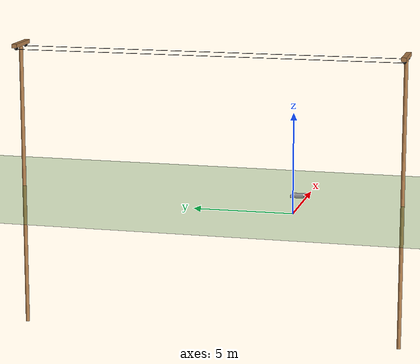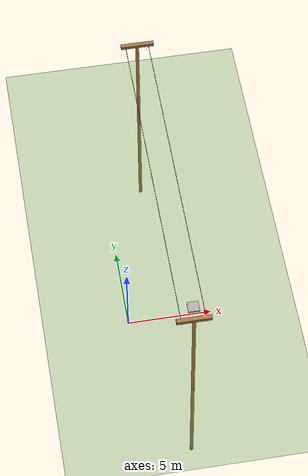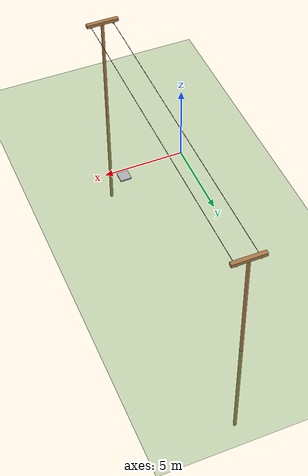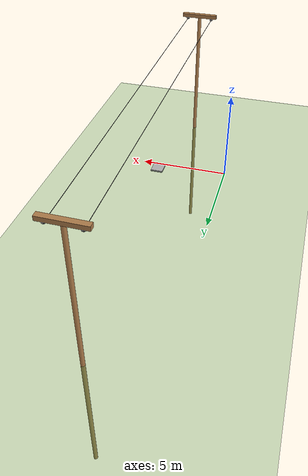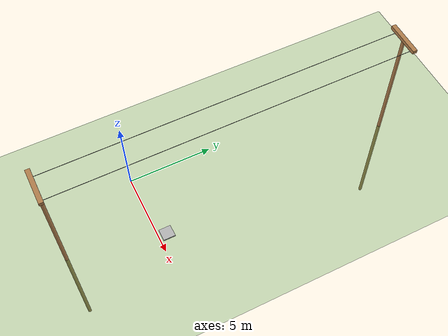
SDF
<sdf version='1.9'>
  <world name='default'>
    <physics type="ode">
      <max_step_size>0.004</max_step_size>
      <real_time_factor>1.0</real_time_factor>
      <real_time_update_rate>250</real_time_update_rate>
    </physics>
    <plugin name='gz::sim::systems::Physics' filename='gz-sim-physics-system'/>
    <plugin name='gz::sim::systems::UserCommands' filename='gz-sim-user-commands-system'/>
    <plugin name='gz::sim::systems::SceneBroadcaster' filename='gz-sim-scene-broadcaster-system'/>
    <plugin name='gz::sim::systems::Contact' filename='gz-sim-contact-system'/>
    <plugin name='gz::sim::systems::Imu' filename='gz-sim-imu-system'/>
    <plugin name='gz::sim::systems::AirPressure' filename='gz-sim-air-pressure-system'/>
    <plugin name='gz::sim::systems::Sensors' filename='gz-sim-sensors-system'>
      <render_engine>ogre2</render_engine>
    </plugin>
    <gui fullscreen='false'>

    </gui>
    <gravity>0 0 -9.8</gravity>
    <magnetic_field>6e-06 2.3e-05 -4.2e-05</magnetic_field>
    <atmosphere type='adiabatic'/>
    <scene>
      <grid>false</grid>
      <ambient>0.4 0.4 0.4 1</ambient>
      <background>0.7 0.7 0.7 1</background>
      <shadows>true</shadows>
    </scene>

    <!--PLANO-->

    <model name='ground_plane'>
      <static>true</static>
      <link name='link'>
        <collision name='collision'>
          <geometry>
            <plane>
              <normal>0 0 1</normal>
              <size>1 1</size>
            </plane>
          </geometry>
          <surface>
            <friction>
              <ode/>
            </friction>
            <bounce/>
            <contact/>
          </surface>
        </collision>
        <visual name='visual'>
          <geometry>
            <plane>
              <normal>0 0 1</normal>
              <size>100 100</size>
            </plane>
          </geometry>
          <material>
            <script>
              <name>Gazebo/Grass</name>
              <uri>/usr/share/gazebo-11/media/materials/scripts/gazebo.material</uri>
            </script>
          </material>
        </visual>
        <pose>0 0 0 0 -0 0</pose>
        <inertial>
          <pose>0 0 0 0 -0 0</pose>
          <mass>1</mass>
          <inertia>
            <ixx>1</ixx>
            <ixy>0</ixy>
            <ixz>0</ixz>
            <iyy>1</iyy>
            <iyz>0</iyz>
            <izz>1</izz>
          </inertia>
        </inertial>
        <enable_wind>false</enable_wind>
      </link>
      <pose>0 0 0 0 -0 0</pose>
      <self_collide>false</self_collide>
    </model>

    <!--Parte vertical da Torre 1 -->
    <model name='transmission_tower_vertical'>
      <static>true</static>
      <link name='torre_vertical'>
        <collision name='collision_vertical'>
          <geometry>
          <cylinder>
            <radius>0.1</radius>
            <length>15</length>
          </cylinder>
        </geometry>
          <surface>
            <friction>
              <ode/>
            </friction>
            <bounce/>
            <contact/>
          </surface>
        </collision>
        <visual name='visual_vertical'>
          <geometry>
          <cylinder>
            <radius>0.1</radius>
            <length>15</length>
          </cylinder>
        </geometry>
          <material>
            <script>
              <name>Gazebo/Wood</name>
              <uri>/usr/share/gazebo-11/media/materials/scripts/gazebo.material</uri>
            </script>
          </material>
        </visual>
        <pose>3 -5 0 0 -0 0</pose>
        <inertial>
          <pose>0 0 0 0 -0 0</pose>
          <mass>1</mass>
          <inertia>
            <ixx>1</ixx>
            <ixy>0</ixy>
            <ixz>0</ixz>
            <iyy>1</iyy>
            <iyz>0</iyz>
            <izz>1</izz>
          </inertia>
        </inertial>
        <enable_wind>false</enable_wind>
      </link>
      <pose>0 0 0 0 -0 0</pose>
      <self_collide>false</self_collide>
    </model>

    <!--Parte horizontal da Torre 1-->
    <model name='transmission_tower_horizontal'>
      <static>true</static>
      <link name='torre_horizontal'>
        <collision name='collision_horizontal'>
          <geometry>
          <box>
            <size>2 0.25 0.2</size>
          </box>
        </geometry>
          <surface>
            <friction>
              <ode/>
            </friction>
            <bounce/>
            <contact/>
          </surface>
        </collision>
        <visual name='visual_horizontal'>
          <geometry>
         <box>
            <size>2 0.25 0.2</size>
          </box>
        </geometry>
          <material>
            <script>
              <name>Gazebo/Wood</name>
              <uri>/usr/share/gazebo-11/media/materials/scripts/gazebo.material</uri>
            </script>
          </material>
        </visual>
        <pose>3 -5 7.5 0 -0 0</pose>
        <inertial>
          <pose>0 0 0 0 -0 0</pose>
          <mass>1</mass>
          <inertia>
            <ixx>1</ixx>
            <ixy>0</ixy>
            <ixz>0</ixz>
            <iyy>1</iyy>
            <iyz>0</iyz>
            <izz>1</izz>
          </inertia>
        </inertial>
        <enable_wind>false</enable_wind>
      </link>
      <pose>0 0 0 0 -0 0</pose>
      <self_collide>false</self_collide>
    </model>

    <!--Parte vertical da Torre 2-->
    <model name='transmission_tower_vertical2'>
      <static>true</static>
      <link name='torre_vertical'>
        <collision name='collision_vertical2'>
          <geometry>
          <cylinder>
            <radius>0.1</radius>
            <length>15</length>
          </cylinder>
        </geometry>
          <surface>
            <friction>
              <ode/>
            </friction>
            <bounce/>
            <contact/>
          </surface>
        </collision>
        <visual name='visual_vertical2'>
          <geometry>
          <cylinder>
            <radius>0.1</radius>
            <length>15</length>
          </cylinder>
        </geometry>
          <material>
            <script>
              <name>Gazebo/Wood</name>
              <uri>/usr/share/gazebo-11/media/materials/scripts/gazebo.material</uri>
            </script>
          </material>
        </visual>
        <pose>3 15 0 0 -0 0</pose>
        <inertial>
          <pose>0 0 0 0 -0 0</pose>
          <mass>1</mass>
          <inertia>
            <ixx>1</ixx>
            <ixy>0</ixy>
            <ixz>0</ixz>
            <iyy>1</iyy>
            </inertia>
        </inertial>
        <enable_wind>false</enable_wind>
      </link>
      <pose>0 0 0 0 -0 0</pose>
      <self_collide>false</self_collide>
    </model>

    <!--Parte horizontal da Torre 2-->
    <model name='transmission_tower_horizontal2'>
      <static>true</static>
      <link name='torre_horizontal'>
        <collision name='collision_horizontal2'>
          <geometry>
          <box>
            <size>2 0.25 0.2</size>
          </box>
        </geometry>
          <surface>
            <friction>
              <ode/>
            </friction>
            <bounce/>
            <contact/>
          </surface>
        </collision>
        <visual name='visual_horizontal'>
          <geometry>
         <box>
            <size>2 0.25 0.2</size>
          </box>
        </geometry>
          <material>
            <script>
              <name>Gazebo/Wood</name>
              <uri>/usr/share/gazebo-11/media/materials/scripts/gazebo.material</uri>
            </script>
          </material>
        </visual>
        <pose>3 15 7.5 0 -0 0</pose>
        <inertial>
          <pose>0 0 0 0 -0 0</pose>
          <mass>1</mass>
          <inertia>
            <ixx>1</ixx>
            <ixy>0</ixy>
            <ixz>0</ixz>
            <iyy>1</iyy>
            <iyz>0</iyz>
            <izz>1</izz>
          </inertia>
        </inertial>
        <enable_wind>false</enable_wind>
      </link>
      <pose>0 0 0 0 -0 0</pose>
      <self_collide>false</self_collide>
    </model>

  <!--Cabo 1-->
  <model name='cabo1'>
      <static>true</static>
      <link name='cabo1'>
        <collision name='cabo1_collision'>
          <geometry>
          <cylinder>
            <radius>0.01</radius>
            <length>20</length>
          </cylinder>
        </geometry>
          <surface>
            <friction>
              <ode/>
            </friction>
            <bounce/>
            <contact/>
          </surface>
        </collision>
        <visual name='cabo'>
          <geometry>
          <cylinder>
            <radius>0.01</radius>
            <length>20</length>
          </cylinder>
        </geometry>
          <material>
            <script>
              <name>Gazebo/Black</name>
              <uri>/usr/share/gazebo-11/media/materials/scripts/gazebo.material</uri>
            </script>
          </material>
        </visual>
        <pose>2.3 5 7.3 1.5708 -0 0</pose>
        <inertial>
          <pose>0 0 0 0 -0 0</pose>
          <mass>1</mass>
          <inertia>
            <ixx>1</ixx>
            <ixy>0</ixy>
            <ixz>0</ixz>
            <iyy>1</iyy>
            <iyz>0</iyz>
            <izz>1</izz>
          </inertia>
        </inertial>
        <enable_wind>false</enable_wind>
      </link>
      <pose>0 0 0 0 -0 0</pose>
      <self_collide>false</self_collide>
    </model>

  <!--Cabo 2-->
  <model name='cabo2'>
        <static>true</static>
        <link name='cabo2'>
          <collision name='cabo2_collision'>
            <geometry>
            <cylinder>
              <radius>0.01</radius>
              <length>20</length>
            </cylinder>
          </geometry>
            <surface>
              <friction>
                <ode/>
              </friction>
              <bounce/>
              <contact/>
            </surface>
          </collision>
          <visual name='cabo'>
            <geometry>
            <cylinder>
              <radius>0.01</radius>
              <length>20</length>
            </cylinder>
          </geometry>
            <material>
              <script>
                <name>Gazebo/Black</name>
                <uri>/usr/share/gazebo-11/media/materials/scripts/gazebo.material</uri>
              </script>
            </material>
          </visual>
          <pose>3.7 5 7.3 1.5708 -0 0</pose>
          <inertial>
            <pose>0 0 0 0 -0 0</pose>
            <mass>1</mass>
            <inertia>
              <ixx>1</ixx>
              <ixy>0</ixy>
              <ixz>0</ixz>
              <iyy>1</iyy>
              <iyz>0</iyz>
              <izz>1</izz>
            </inertia>
          </inertial>
          <enable_wind>false</enable_wind>
        </link>
        <pose>0 0 0 0 -0 0</pose>
        <self_collide>false</self_collide>
      </model>

<!--Suporte-->
  <model name='suporte_cabo'>
    <static>true</static>
    <link name="link1">
      <pose>2.3 -5 7.4 0 -0 0</pose>
      <visual name="vis1">
        <pose>0 0 0 0 0 0</pose>
      <geometry>
        <cylinder>
          <radius>0.1</radius>
          <length>0.1</length>
        </cylinder>
      </geometry>
      <material>
        <script>
          <name>Gazebo/Black</name>
          <uri>/usr/share/gazebo-11/media/materials/scripts/gazebo.material</uri>
        </script>
      </material>
    </visual>
    <visual name="vis2">
      <pose>0 0 -0.05 0 -0 0</pose>
      <geometry>
        <sphere>
          <radius>0.1</radius>
        </sphere>
      </geometry>
      <material>
        <script>
          <name>Gazebo/Black</name>
          <uri>/usr/share/gazebo-11/media/materials/scripts/gazebo.material</uri>
        </script>
      </material>
    </visual>
    <visual name="vis3">
        <pose> 1.4 0 0 0 -0 0</pose>
      <geometry>
        <cylinder>
          <radius>0.1</radius>
          <length>0.1</length>
        </cylinder>
      </geometry>
      <material>
        <script>
          <name>Gazebo/Black</name>
          <uri>/usr/share/gazebo-11/media/materials/scripts/gazebo.material</uri>
        </script>
      </material>
    </visual>
    <visual name="vis4">
      <pose>1.4 0 -0.05 0 -0 0</pose>
      <geometry>
        <sphere>
          <radius>0.1</radius>
        </sphere>
      </geometry>
      <material>
        <script>
          <name>Gazebo/Black</name>
          <uri>/usr/share/gazebo-11/media/materials/scripts/gazebo.material</uri>
        </script>
      </material>
    </visual>
    <visual name="vis5">
        <pose>0 20 0 0 0 0</pose>
      <geometry>
        <cylinder>
          <radius>0.1</radius>
          <length>0.1</length>
        </cylinder>
      </geometry>
      <material>
        <script>
          <name>Gazebo/Black</name>
          <uri>/usr/share/gazebo-11/media/materials/scripts/gazebo.material</uri>
        </script>
      </material>
    </visual>
    <visual name="vis6">
      <pose>0 20 -0.05 0 -0 0</pose>
      <geometry>
        <sphere>
          <radius>0.1</radius>
        </sphere>
      </geometry>
      <material>
        <script>
          <name>Gazebo/Black</name>
          <uri>/usr/share/gazebo-11/media/materials/scripts/gazebo.material</uri>
        </script>
      </material>
    </visual>
    <visual name="vis7">
        <pose> 1.4 20 0 0 -0 0</pose>
      <geometry>
        <cylinder>
          <radius>0.1</radius>
          <length>0.1</length>
        </cylinder>
      </geometry>
      <material>
        <script>
          <name>Gazebo/Black</name>
          <uri>/usr/share/gazebo-11/media/materials/scripts/gazebo.material</uri>
        </script>
      </material>
    </visual>
    <visual name="vis8">
      <pose>1.4 20 -0.05 0 -0 0</pose>
      <geometry>
        <sphere>
          <radius>0.1</radius>
        </sphere>
      </geometry>
      <material>
        <script>
          <name>Gazebo/Black</name>
          <uri>/usr/share/gazebo-11/media/materials/scripts/gazebo.material</uri>
        </script>
      </material>
    </visual>
    </link>
  </model>

  <!--\Alvo-->
  <model name='alvop'>
    <static>true</static>
    <link name='alvo'>
      <collision name='alvoo'>
        <geometry>
        <box>
          <size>0.7 0.1 0.7</size>
        </box>
      </geometry>
        <surface>
          <friction>
            <ode/>
          </friction>
          <bounce/>
          <contact/>
        </surface>
      </collision>
      <visual name='allvo'>
        <geometry>
          <box>
            <size>0.7 0.1 0.7</size>
          </box>
      </geometry>
        <material>
          <script>
            <name>Gazebo/Alvo</name>
            <uri>/home/talles/UFU/TCC/PX4-Autopilot/Tools/simulation/gazebo-classic/sitl_gazebo-classic/worlds/sources/alvo.material</uri>
          </script>
        </material>
      </visual>
      <pose>4 0.5 0 1.5708 -0 0</pose>
      <inertial>
        <pose>0 0 0 0 -0 0</pose>
        <mass>1</mass>
        <inertia>
          <ixx>1</ixx>
          <ixy>0</ixy>
          <ixz>0</ixz>
          <iyy>1</iyy>
          <iyz>0</iyz>
          <izz>1</izz>
        </inertia>
      </inertial>
      <enable_wind>false</enable_wind>
    </link>
    <pose>0 0 0 0 -0 0</pose>
    <self_collide>false</self_collide>
  </model>

    <light name='sunUTC' type='directional'>
      <pose>0 0 500 0 -0 0</pose>
      <cast_shadows>true</cast_shadows>
      <intensity>1</intensity>
      <direction>0.001 0.625 -0.78</direction>
      <diffuse>0.904 0.904 0.904 1</diffuse>
      <specular>0.271 0.271 0.271 1</specular>
      <attenuation>
        <range>2000</range>
        <linear>0</linear>
        <constant>1</constant>
        <quadratic>0</quadratic>
      </attenuation>
      <spot>
        <inner_angle>0</inner_angle>
        <outer_angle>0</outer_angle>
        <falloff>0</falloff>
      </spot>
    </light>
  </world>
</sdf>
